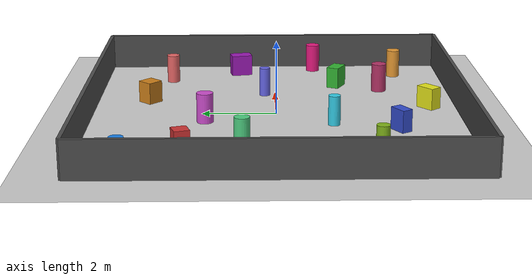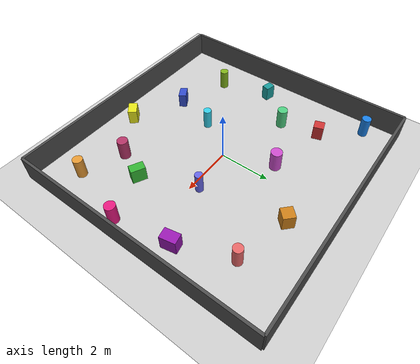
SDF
<?xml version="1.0" ?>
<sdf version="1.6">
  <world name="obstacle_world">

    <!-- ── Physics ──────────────────────────────────────────────── -->
    <physics type="ode">
      <real_time_update_rate>1000.0</real_time_update_rate>
      <max_step_size>0.001</max_step_size>
      <real_time_factor>1</real_time_factor>
    </physics>

    <!-- ── Lighting ──────────────────────────────────────────────── -->
    <include><uri>model://sun</uri></include>
    <include><uri>model://ground_plane</uri></include>

    <!-- ── Perimeter walls (5 m × 5 m arena) ───────────────────── -->
    <model name="wall_north">
      <static>true</static>
      <pose>0 5 0.5 0 0 0</pose>
      <link name="link">
        <collision name="c"><geometry><box><size>10 0.1 1.0</size></box></geometry></collision>
        <visual name="v"><geometry><box><size>10 0.1 1.0</size></box></geometry>
          <material><ambient>0.3 0.3 0.3 1</ambient></material></visual>
      </link>
    </model>

    <model name="wall_south">
      <static>true</static>
      <pose>0 -5 0.5 0 0 0</pose>
      <link name="link">
        <collision name="c"><geometry><box><size>10 0.1 1.0</size></box></geometry></collision>
        <visual name="v"><geometry><box><size>10 0.1 1.0</size></box></geometry>
          <material><ambient>0.3 0.3 0.3 1</ambient></material></visual>
      </link>
    </model>

    <model name="wall_east">
      <static>true</static>
      <pose>5 0 0.5 0 0 1.5708</pose>
      <link name="link">
        <collision name="c"><geometry><box><size>10 0.1 1.0</size></box></geometry></collision>
        <visual name="v"><geometry><box><size>10 0.1 1.0</size></box></geometry>
          <material><ambient>0.3 0.3 0.3 1</ambient></material></visual>
      </link>
    </model>

    <model name="wall_west">
      <static>true</static>
      <pose>-5 0 0.5 0 0 1.5708</pose>
      <link name="link">
        <collision name="c"><geometry><box><size>10 0.1 1.0</size></box></geometry></collision>
        <visual name="v"><geometry><box><size>10 0.1 1.0</size></box></geometry>
          <material><ambient>0.3 0.3 0.3 1</ambient></material></visual>
      </link>
    </model>

    <!-- ── Random obstacles ─────────────────────────────────────── -->
    <!-- Boxes -->
    <model name="obs_box_0">
      <static>true</static><pose>-3.1  2.4  0.3  0 0  0.31</pose>
      <link name="link">
        <collision name="c"><geometry><box><size>0.4 0.4 0.6</size></box></geometry></collision>
        <visual name="v"><geometry><box><size>0.4 0.4 0.6</size></box></geometry>
          <material><ambient>0.8 0.2 0.2 1</ambient></material></visual>
      </link>
    </model>

    <model name="obs_box_1">
      <static>true</static><pose> 2.7 -1.8  0.3  0 0  1.10</pose>
      <link name="link">
        <collision name="c"><geometry><box><size>0.35 0.55 0.6</size></box></geometry></collision>
        <visual name="v"><geometry><box><size>0.35 0.55 0.6</size></box></geometry>
          <material><ambient>0.2 0.7 0.2 1</ambient></material></visual>
      </link>
    </model>

    <model name="obs_box_2">
      <static>true</static><pose>-1.5 -3.2  0.3  0 0  0.55</pose>
      <link name="link">
        <collision name="c"><geometry><box><size>0.5 0.3 0.6</size></box></geometry></collision>
        <visual name="v"><geometry><box><size>0.5 0.3 0.6</size></box></geometry>
          <material><ambient>0.2 0.3 0.8 1</ambient></material></visual>
      </link>
    </model>

    <model name="obs_box_3">
      <static>true</static><pose> 1.2  3.5  0.3  0 0  0.80</pose>
      <link name="link">
        <collision name="c"><geometry><box><size>0.45 0.45 0.6</size></box></geometry></collision>
        <visual name="v"><geometry><box><size>0.45 0.45 0.6</size></box></geometry>
          <material><ambient>0.8 0.5 0.1 1</ambient></material></visual>
      </link>
    </model>

    <model name="obs_box_4">
      <static>true</static><pose> 4.1  1.0  0.3  0 0  0.20</pose>
      <link name="link">
        <collision name="c"><geometry><box><size>0.4 0.6 0.6</size></box></geometry></collision>
        <visual name="v"><geometry><box><size>0.4 0.6 0.6</size></box></geometry>
          <material><ambient>0.6 0.1 0.7 1</ambient></material></visual>
      </link>
    </model>

    <model name="obs_box_5">
      <static>true</static><pose>-4.0 -0.5  0.3  0 0  1.30</pose>
      <link name="link">
        <collision name="c"><geometry><box><size>0.3 0.4 0.6</size></box></geometry></collision>
        <visual name="v"><geometry><box><size>0.3 0.4 0.6</size></box></geometry>
          <material><ambient>0.1 0.6 0.6 1</ambient></material></visual>
      </link>
    </model>

    <model name="obs_box_6">
      <static>true</static><pose> 0.5 -4.2  0.3  0 0  0.70</pose>
      <link name="link">
        <collision name="c"><geometry><box><size>0.55 0.35 0.6</size></box></geometry></collision>
        <visual name="v"><geometry><box><size>0.55 0.35 0.6</size></box></geometry>
          <material><ambient>0.9 0.9 0.1 1</ambient></material></visual>
      </link>
    </model>

    <!-- Cylinders -->
    <model name="obs_cyl_0">
      <static>true</static><pose> 3.3  3.0  0.4  0 0 0</pose>
      <link name="link">
        <collision name="c"><geometry><cylinder><radius>0.18</radius><length>0.8</length></cylinder></geometry></collision>
        <visual name="v"><geometry><cylinder><radius>0.18</radius><length>0.8</length></cylinder></geometry>
          <material><ambient>0.9 0.4 0.4 1</ambient></material></visual>
      </link>
    </model>

    <model name="obs_cyl_1">
      <static>true</static><pose>-2.8  0.9  0.4  0 0 0</pose>
      <link name="link">
        <collision name="c"><geometry><cylinder><radius>0.20</radius><length>0.8</length></cylinder></geometry></collision>
        <visual name="v"><geometry><cylinder><radius>0.20</radius><length>0.8</length></cylinder></geometry>
          <material><ambient>0.3 0.8 0.5 1</ambient></material></visual>
      </link>
    </model>

    <model name="obs_cyl_2">
      <static>true</static><pose> 1.8  0.3  0.4  0 0 0</pose>
      <link name="link">
        <collision name="c"><geometry><cylinder><radius>0.15</radius><length>0.8</length></cylinder></geometry></collision>
        <visual name="v"><geometry><cylinder><radius>0.15</radius><length>0.8</length></cylinder></geometry>
          <material><ambient>0.4 0.4 0.9 1</ambient></material></visual>
      </link>
    </model>

    <model name="obs_cyl_3">
      <static>true</static><pose>-0.7  1.9  0.4  0 0 0</pose>
      <link name="link">
        <collision name="c"><geometry><cylinder><radius>0.22</radius><length>0.8</length></cylinder></geometry></collision>
        <visual name="v"><geometry><cylinder><radius>0.22</radius><length>0.8</length></cylinder></geometry>
          <material><ambient>0.8 0.3 0.8 1</ambient></material></visual>
      </link>
    </model>

    <model name="obs_cyl_4">
      <static>true</static><pose>-3.5 -2.5  0.4  0 0 0</pose>
      <link name="link">
        <collision name="c"><geometry><cylinder><radius>0.17</radius><length>0.8</length></cylinder></geometry></collision>
        <visual name="v"><geometry><cylinder><radius>0.17</radius><length>0.8</length></cylinder></geometry>
          <material><ambient>0.5 0.7 0.1 1</ambient></material></visual>
      </link>
    </model>

    <model name="obs_cyl_5">
      <static>true</static><pose> 3.8 -3.6  0.4  0 0 0</pose>
      <link name="link">
        <collision name="c"><geometry><cylinder><radius>0.19</radius><length>0.8</length></cylinder></geometry></collision>
        <visual name="v"><geometry><cylinder><radius>0.19</radius><length>0.8</length></cylinder></geometry>
          <material><ambient>0.9 0.6 0.2 1</ambient></material></visual>
      </link>
    </model>

    <model name="obs_cyl_6">
      <static>true</static><pose>-1.0 -1.5  0.4  0 0 0</pose>
      <link name="link">
        <collision name="c"><geometry><cylinder><radius>0.16</radius><length>0.8</length></cylinder></geometry></collision>
        <visual name="v"><geometry><cylinder><radius>0.16</radius><length>0.8</length></cylinder></geometry>
          <material><ambient>0.2 0.8 0.9 1</ambient></material></visual>
      </link>
    </model>

    <model name="obs_cyl_7">
      <static>true</static><pose> 2.2 -3.0  0.4  0 0 0</pose>
      <link name="link">
        <collision name="c"><geometry><cylinder><radius>0.21</radius><length>0.8</length></cylinder></geometry></collision>
        <visual name="v"><geometry><cylinder><radius>0.21</radius><length>0.8</length></cylinder></geometry>
          <material><ambient>0.7 0.2 0.4 1</ambient></material></visual>
      </link>
    </model>

    <model name="obs_cyl_8">
      <static>true</static><pose>-4.3  3.8  0.4  0 0 0</pose>
      <link name="link">
        <collision name="c"><geometry><cylinder><radius>0.18</radius><length>0.8</length></cylinder></geometry></collision>
        <visual name="v"><geometry><cylinder><radius>0.18</radius><length>0.8</length></cylinder></geometry>
          <material><ambient>0.1 0.5 0.9 1</ambient></material></visual>
      </link>
    </model>

    <model name="obs_cyl_9">
      <static>true</static><pose> 4.5 -1.2  0.4  0 0 0</pose>
      <link name="link">
        <collision name="c"><geometry><cylinder><radius>0.20</radius><length>0.8</length></cylinder></geometry></collision>
        <visual name="v"><geometry><cylinder><radius>0.20</radius><length>0.8</length></cylinder></geometry>
          <material><ambient>0.9 0.1 0.5 1</ambient></material></visual>
      </link>
    </model>

  </world>
</sdf>
